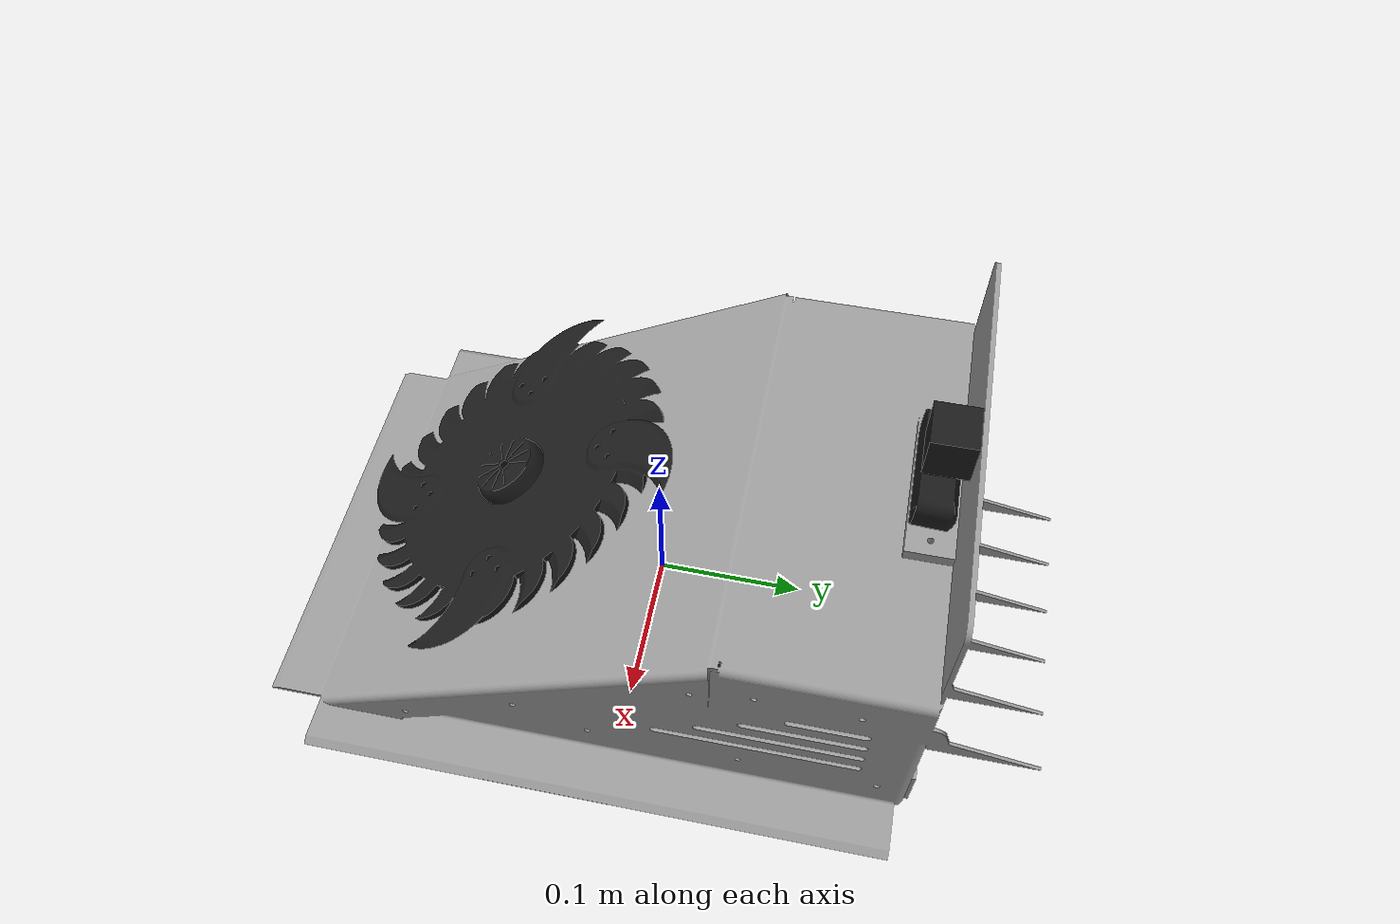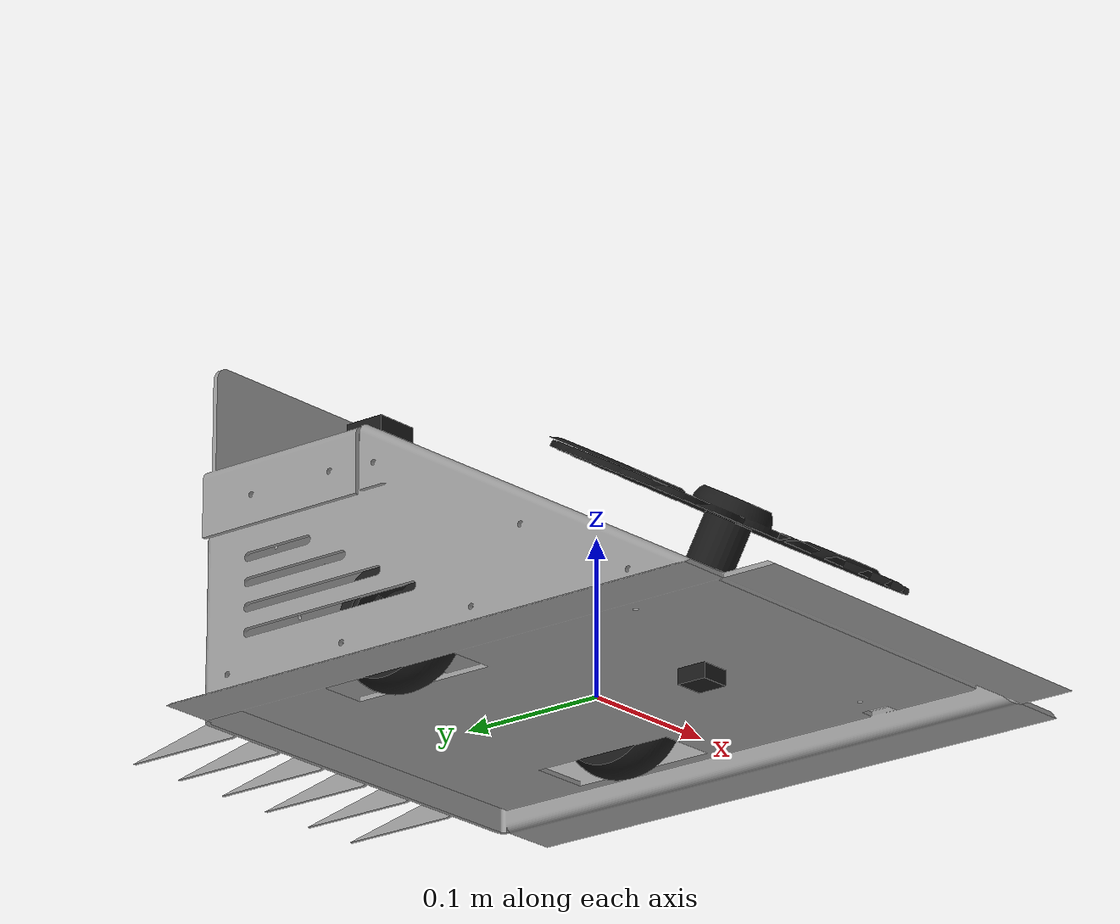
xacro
<?xml version="1.0"?>
<robot name="sumo_robot" xmlns:xacro="http://www.ros.org/wiki/xacro">

    <material name="grey">
        <color rgba="0.6 0.6 0.6 1.0"/>
    </material>
    <material name="black">
        <color rgba="0.1 0.1 0.1 1.0"/>
    </material>

    <link name="base_link"/>

    <joint name="base_joint" type="fixed">
        <parent link="base_link"/>
        <child link="body"/>
        <origin xyz="0 0 0" rpy="1.5708 0 0"/>
    </joint>

    <link name="body">
        <visual>
            <geometry>
             <mesh filename="package://sumo_description/meshes/STLs/bodyhhh.STL" scale="1 1 1"/>
            </geometry>
            <material name="grey"/>
        </visual>
        <collision>
            <geometry>
                <mesh filename="package://sumo_description/meshes/STLs/bodyhhh.STL" scale="1 1 1"/>
            </geometry>
        </collision>
      <inertial>
         <origin xyz="0.00 0.05 -0.03" rpy="0 0 0"/>
         <mass value="10.26"/>
         <inertia ixx="0.20" ixy="0.0" ixz="0.0" iyy="0.28" iyz="-0.04" izz="0.15"/>
      </inertial>
    </link>

    <link name="cutting_wheel_connector">
        <visual>
            <origin xyz="0 0 -0.02" rpy="0 0 0"/>
            <geometry>
                <cylinder radius="0.015" length="0.04"/>
            </geometry>
            <material name="black"/>
        </visual>
        <inertial>
            <mass value="0.001"/>
            <inertia ixx="0.000001" ixy="0.0" ixz="0.0" iyy="0.000001" iyz="0.0" izz="0.000001"/>
        </inertial>
    </link>

    <joint name="cutting_wheel_connector_joint" type="fixed">
        <parent link="body"/>
        <child link="cutting_wheel_connector"/>
        <origin xyz="0.003 0.08986 0.09845" rpy="-1.0472 0 0"/>
    </joint>

    <link name="cutting_wheel">
        <visual>
            <origin xyz="0 0 0" rpy="0 0 0"/>
            <geometry>
            <mesh filename="package://sumo_description/meshes/STLs/Cutting_wheelfffhh.STL" scale="1 1 1"/>
            </geometry>
            <material name="black"/>
        </visual>
        <collision>
            <origin xyz="0 0 0" rpy="0 0 0"/>
            <geometry>
                <cylinder radius="0.135" length="0.004"/>
            </geometry>
        </collision>
        <inertial>
            <origin xyz="0 0 0.00294" rpy="0 0 0"/>
            <mass value="0.17182"/>
            <inertia ixx="0.000474" ixy="0.0" ixz="0.0" iyy="0.000474" iyz="0.0" izz="0.000947"/>
        </inertial>
    </link>

    <joint name="cutting_wheel_joint" type="continuous">
        <parent link="body"/>
        <child link="cutting_wheel"/>
        <origin xyz="0.003 0.08986 0.09845" rpy="-1.0472 0 0"/>
        <axis xyz="0 0 1"/>
        <limit effort="500.0" velocity="20.0"/>
    </joint>

    <link name="right_wheel">
        <visual>
            <origin xyz="0 0 0" rpy="0 0 0"/>
            <geometry>
                <mesh filename="package://sumo_description/meshes/STLs/Wheelh.STL" scale="1 1 1"/>
            </geometry>
            <material name="black"/>
        </visual>
        <collision>
            <origin xyz="0 0 0" rpy="0 1.5708 0"/>
            <geometry>
                <cylinder radius="0.0425" length="0.038"/>
            </geometry>
        </collision>
        <inertial>
            <origin xyz="0 0 0" rpy="0 0 0"/>
            <mass value="0.10621"/>
            <inertia ixx="0.000108" ixy="0.0" ixz="0.0" iyy="0.000061" iyz="0.0" izz="0.000061"/>
        </inertial>
    </link>

    <joint name="right_wheel_joint" type="continuous">
        <parent link="body"/>
        <child link="right_wheel"/>
        <origin xyz="0.104029 0.031999 -0.063999" rpy="0 0 0"/>
        <axis xyz="1 0 0"/>
        <limit effort="500.0" velocity="20.0"/>
    </joint>

    <link name="left_wheel">
        <visual>
            <origin xyz="0 0 0" rpy="0 0 0"/>
            <geometry>
                <mesh filename="package://sumo_description/meshes/STLs/Wheelh.STL" scale="1 1 1"/>
            </geometry>
            <material name="black"/>
        </visual>
        <collision>
            <origin xyz="0 0 0" rpy="0 1.5708 0"/>
            <geometry>
                <cylinder radius="0.0425" length="0.038"/>
            </geometry>
        </collision>
        <inertial>
            <origin xyz="0 0 0" rpy="0 0 0"/>
            <mass value="0.10621"/>
            <inertia ixx="0.000108" ixy="0.0" ixz="0.0" iyy="0.000061" iyz="0.0" izz="0.000061"/>
        </inertial>
    </link>

    <joint name="left_wheel_joint" type="continuous">
        <parent link="body"/>
        <child link="left_wheel"/>
        <origin xyz="-0.104029 0.031999 -0.063999" rpy="0 0 0"/>
        <axis xyz="1 0 0"/>
        <limit effort="500.0" velocity="20.0"/>
    </joint>

    <link name="camera_link">
        <visual>
            <origin xyz="0 0 0" rpy="0 0 0"/>
            <geometry>
                <mesh filename="package://sumo_description/meshes/STLs/WebCamhh.STL" scale="1 1 1"/>
            </geometry>
            <material name="black"/>
        </visual>
        <collision>
            <origin xyz="0 0 0" rpy="0 0 0"/>
            <geometry>
                <box size="0.077 0.023 0.029"/>
            </geometry>
        </collision>
    </link>

    <joint name="camera_joint" type="fixed">
        <parent link="body"/>
        <child link="camera_link"/>
        <origin xyz="0.000210 0.170350 -0.169" rpy="5.6416 0 0"/>
    </joint>

    <link name="lidar_link">
        <visual>
            <origin xyz="0 0 0" rpy="0 0 0"/>
            <geometry>
                <box size="0.03 0.03 0.03"/>
            </geometry>
            <material name="black"/>
        </visual>
        <collision>
            <origin xyz="0 0 0" rpy="0 0 0"/>
            <geometry>
                <box size="0.01 0.01 0.01"/>
            </geometry>
        </collision>
        <inertial>
            <mass value="0.05"/>
            <inertia ixx="0.00001" ixy="0.0" ixz="0.0" iyy="0.00001" iyz="0.0" izz="0.00001"/>
        </inertial>
    </link>

      <joint name="lidar_joint" type="fixed">
        <parent link="body"/>
        <child link="lidar_link"/>
        <origin xyz="0.000210 0.20 -0.174" rpy="0 0 0"/>
      </joint>

    <link name="caster_link">
        <visual>
            <origin xyz="0 0 0" rpy="0 0 0"/>
            <geometry>
                <box size="0.02 0.02 0.02"/>
            </geometry>
            <material name="black"/>
        </visual>
        <collision>
            <origin xyz="0 0 0" rpy="0 0 0"/>
            <geometry>
                <box size="0.02 0.02 0.02"/>
            </geometry>
        </collision>
        <inertial>
            <mass value="0.05"/>
            <inertia ixx="0.00001" ixy="0.0" ixz="0.0" iyy="0.00001" iyz="0.0" izz="0.00001"/>
        </inertial>
    </link>

    <joint name="caster_joint" type="fixed">
        <parent link="body"/>
        <child link="caster_link"/>
        <origin xyz="0 0 0.08" rpy="0 0 0"/>
    </joint>

    <gazebo reference="caster_link">
        <mu1 value="0.0"/>
        <mu2 value="0.0"/>
        <material>Gazebo/Black</material>
    </gazebo>

    <link name="imu_link">
    </link>

    <joint name="imu_joint" type="fixed">
        <parent link="body"/>
        <child link="imu_link"/>
        <origin xyz="0 0 0" rpy="0 0 0"/>
    </joint>

    <gazebo reference="right_wheel">
        <mu1 value="200.0"/>
        <mu2 value="100.0"/>
        <kp value="10000000.0"/>
        <kd value="1.0"/>
        <material>Gazebo/Black</material>
    </gazebo>

    <gazebo reference="left_wheel">
        <mu1 value="200.0"/>
        <mu2 value="100.0"/>
        <kp value="10000000.0"/>
        <kd value="1.0"/>
        <material>Gazebo/Black</material>
    </gazebo>
</robot>
